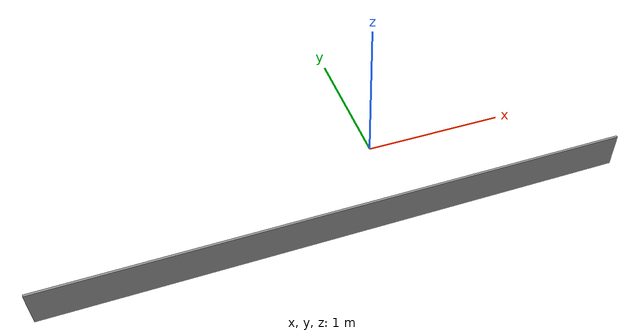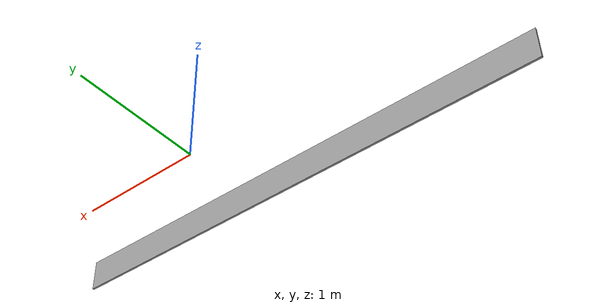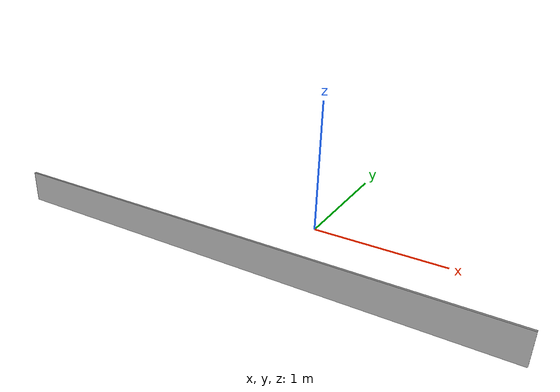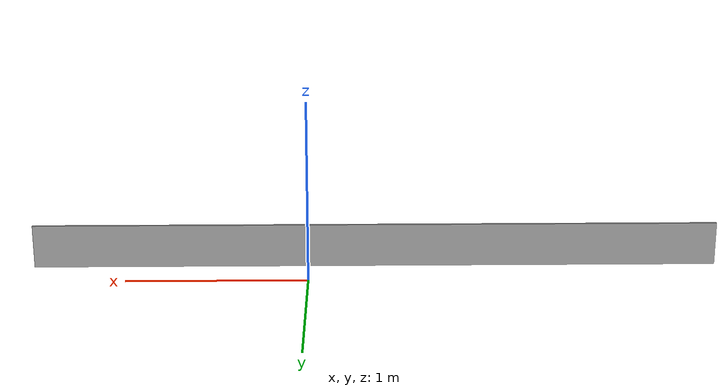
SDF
<?xml version='1.0'?>
<sdf version='1.7'>
  <model name='short-wall'>
    <link name='link'>
      <inertial>
        <mass>0.64575</mass>
        <inertia>
          <ixx>0.00343683</ixx>
          <ixy>0</ixy>
          <ixz>0</ixz>
          <iyy>0.865496</iyy>
          <iyz>0</iyz>
          <izz>0.862086</izz>
        </inertia>
        <pose>0 0 0 0 -0 0</pose>
      </inertial>
      <self_collide>0</self_collide>
      <enable_wind>0</enable_wind>
      <kinematic>1</kinematic>
      <pose>-0.375458 -0.595598 -0.00071 0 -0 0</pose>
      <visual name='visual'>
        <geometry>
          <box>
            <size>4.00249 0.015986 0.252213</size>
          </box>
        </geometry>
        <material>
          <script>
            <name>Gazebo/Grey</name>
            <uri>file://media/materials/scripts/gazebo.material</uri>
          </script>
          <shader type='pixel'/>
        </material>
        <pose>0 0 0 0 -0 0</pose>
        <transparency>0</transparency>
        <cast_shadows>1</cast_shadows>
      </visual>
      <collision name='collision'>
        <laser_retro>0</laser_retro>
        <max_contacts>10</max_contacts>
        <pose>0 0 0 0 -0 0</pose>
        <geometry>
          <box>
            <size>4.00249 0.015986 0.252213</size>
          </box>
        </geometry>
        <surface>
          <friction>
            <ode>
              <mu>1</mu>
              <mu2>1</mu2>
              <fdir1>0 0 0</fdir1>
              <slip1>0</slip1>
              <slip2>0</slip2>
            </ode>
            <torsional>
              <coefficient>1</coefficient>
              <patch_radius>0</patch_radius>
              <surface_radius>0</surface_radius>
              <use_patch_radius>1</use_patch_radius>
              <ode>
                <slip>0</slip>
              </ode>
            </torsional>
          </friction>
          <bounce>
            <restitution_coefficient>0</restitution_coefficient>
            <threshold>1e+06</threshold>
          </bounce>
          <contact>
            <collide_without_contact>0</collide_without_contact>
            <collide_without_contact_bitmask>1</collide_without_contact_bitmask>
            <collide_bitmask>1</collide_bitmask>
            <ode>
              <soft_cfm>0</soft_cfm>
              <soft_erp>0.2</soft_erp>
              <kp>1e+13</kp>
              <kd>1</kd>
              <max_vel>0.01</max_vel>
              <min_depth>0</min_depth>
            </ode>
            <bullet>
              <split_impulse>1</split_impulse>
              <split_impulse_penetration_threshold>-0.01</split_impulse_penetration_threshold>
              <soft_cfm>0</soft_cfm>
              <soft_erp>0.2</soft_erp>
              <kp>1e+13</kp>
              <kd>1</kd>
            </bullet>
          </contact>
        </surface>
      </collision>
    </link>
    <static>1</static>
    <allow_auto_disable>0</allow_auto_disable>
  </model>
</sdf>
